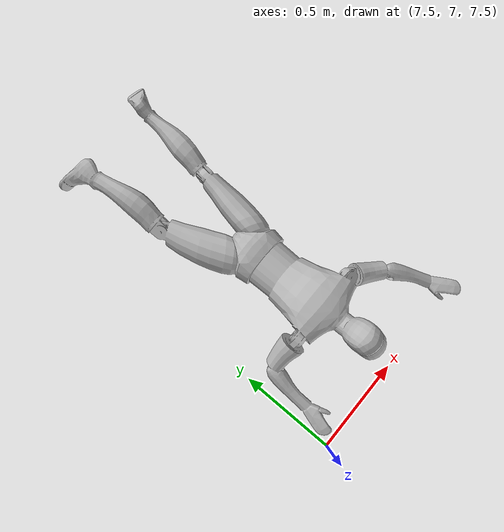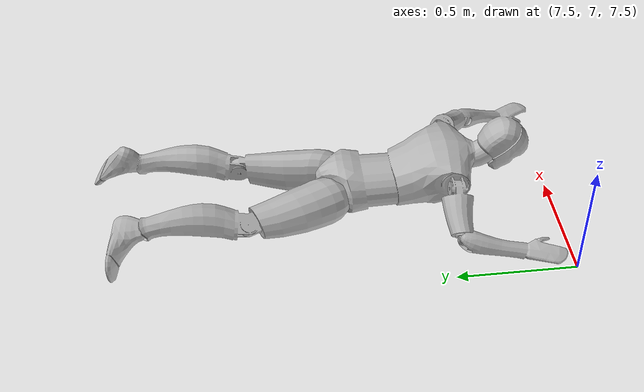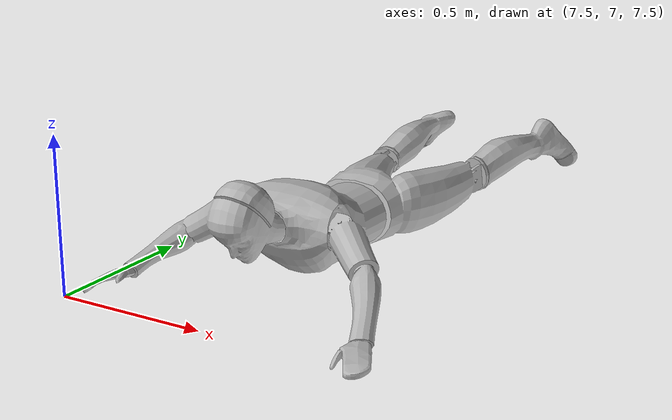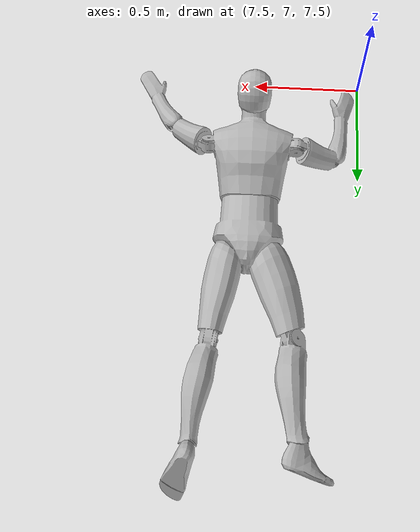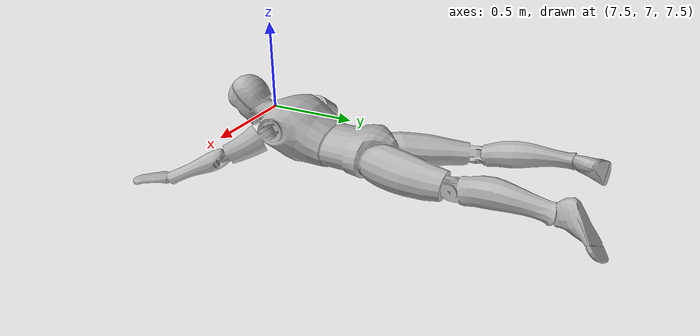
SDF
<?xml version='1.0' ?>
<sdf version='1.6'>
  <model name='Survivor_Male'>
    <pose>8 8 7.5 0 0 0</pose>
    <static>true</static>
    <link name='link'>
      <pose>0 0 -0.837 0 0 0</pose>
      <collision name='collision'>
        <geometry>
          <mesh>
            <uri>file:///home/redpaladin/Projects/helios_as2/src/helios_as2/models/Survivor_Male/meshes/Survivor_Male.dae</uri>
          </mesh>
        </geometry>
      </collision>
      <visual name='visual'>
        <geometry>
          <mesh>
            <uri>file:///home/redpaladin/Projects/helios_as2/src/helios_as2/models/Survivor_Male/meshes/Survivor_Male.dae</uri>
          </mesh>
        </geometry>
      </visual>
    </link>
  </model>
</sdf>
